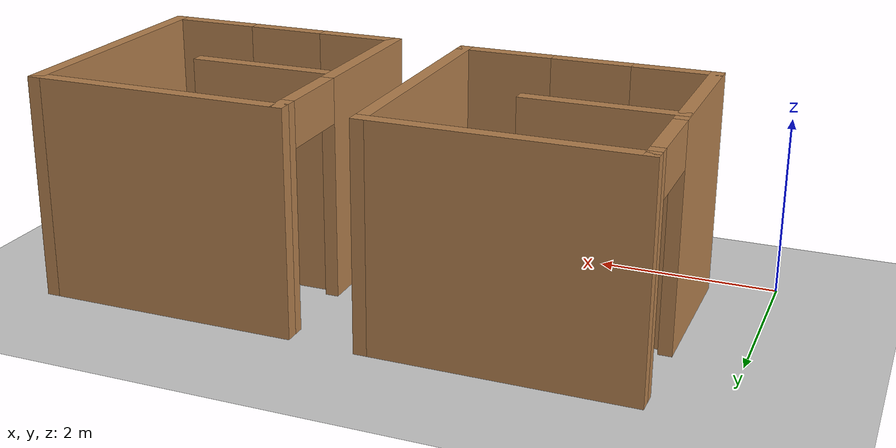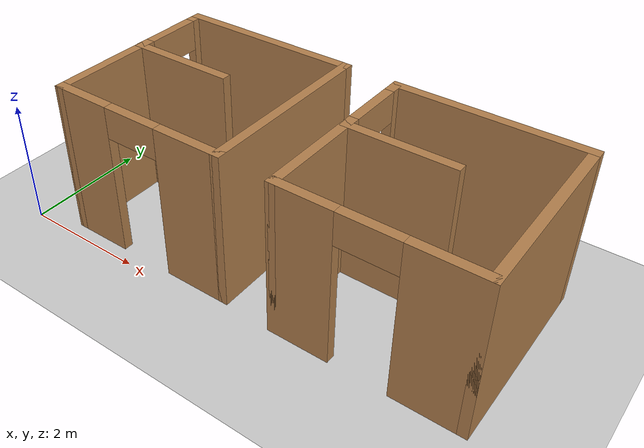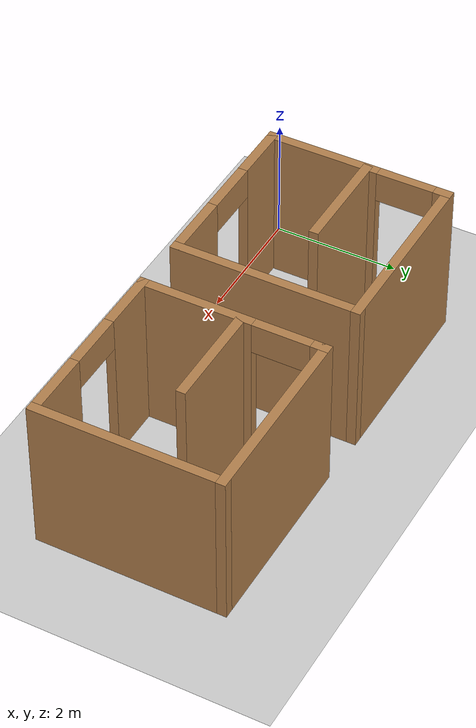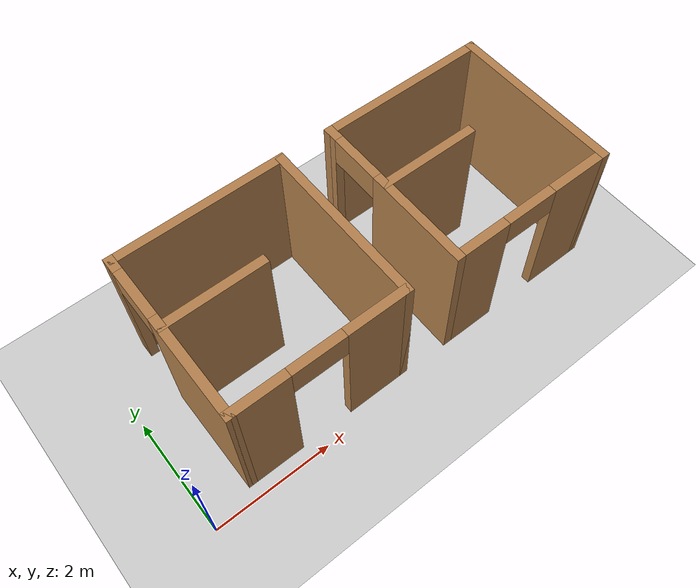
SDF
<sdf version="1.7">
 <world name="default">
  <light name="sun" type="directional">
   <pose>0 0 10 0 -0 0</pose>
   <diffuse>0.8 0.8 0.8 1</diffuse>
   <specular>0.2 0.2 0.2 1</specular>
   <attenuation>
    <range>1000</range>
    <constant>0.9</constant>
    <linear>0.01</linear>
    <quadratic>0.001</quadratic>
   </attenuation>
   <direction>-0.5 0.1 -0.9</direction>
   <spot><inner_angle>0</inner_angle><outer_angle>0</outer_angle><falloff>0</falloff></spot>
  </light>
  <model name="ground_plane">
   <static>1</static>
   <link name="link">
    <collision name="collision">
     <geometry><plane><normal>0 0 1</normal><size>100 100</size></plane></geometry>
     <surface><friction><ode><mu>100</mu><mu2>50</mu2></ode></friction></surface>
    </collision>
    <visual name="visual">
     <cast_shadows>0</cast_shadows>
     <geometry><plane><normal>0 0 1</normal><size>100 100</size></plane></geometry>
     <material>
      <script><uri>file://media/materials/scripts/gazebo.material</uri><name>Gazebo/Grey</name></script>
     </material>
    </visual>
   </link>
  </model>
  <gravity>0 0 -9.8</gravity>
  <magnetic_field>6e-06 2.3e-05 -4.2e-05</magnetic_field>
  <atmosphere type="adiabatic"/>
  <physics type="ode">
   <max_step_size>0.001</max_step_size>
   <real_time_factor>1</real_time_factor>
   <real_time_update_rate>1000</real_time_update_rate>
  </physics>
  <scene><ambient>0.4 0.4 0.4 1</ambient><background>0.7 0.7 0.7 1</background><shadows>1</shadows></scene>
  <audio><device>default</device></audio>
  <spherical_coordinates>
   <surface_model>EARTH_WGS84</surface_model>
   <latitude_deg>0</latitude_deg>
   <longitude_deg>0</longitude_deg>
   <elevation>0</elevation>
   <heading_deg>0</heading_deg>
  </spherical_coordinates>
  <model name="test_world">
   <pose>2.4796 1.71074 0 0 -0 0</pose>
   <link name="Wall_0">
    <pose>-1.6925 -0 0 0 -0 -1.5708</pose>
    <visual name="Wall_0_Visual_0">
     <pose>-1.3625 0 1.25 0 -0 0</pose>
     <geometry><box><size>0.275 0.15 2.5</size></box></geometry>
     <material>
      <script><uri>file://media/materials/scripts/gazebo.material</uri><name>Gazebo/Wood</name></script>
      <ambient>1 1 1 1</ambient>
     </material>
     <meta><layer>0</layer></meta>
    </visual>
    <collision name="Wall_0_Collision_0">
     <geometry><box><size>0.275 0.15 2.5</size></box></geometry>
     <pose>-1.3625 0 1.25 0 -0 0</pose>
    </collision>
    <visual name="Wall_0_Visual_1">
     <pose>0.5875 0 1.25 0 -0 0</pose>
     <geometry><box><size>1.825 0.15 2.5</size></box></geometry>
     <material>
      <script><uri>file://media/materials/scripts/gazebo.material</uri><name>Gazebo/Wood</name></script>
      <ambient>1 1 1 1</ambient>
     </material>
     <meta><layer>0</layer></meta>
    </visual>
    <collision name="Wall_0_Collision_1">
     <geometry><box><size>1.825 0.15 2.5</size></box></geometry>
     <pose>0.5875 0 1.25 0 -0 0</pose>
    </collision>
    <visual name="Wall_0_Visual_2">
     <pose>-0.775 0 2.25 0 -0 0</pose>
     <geometry><box><size>0.9 0.15 0.5</size></box></geometry>
     <material>
      <script><uri>file://media/materials/scripts/gazebo.material</uri><name>Gazebo/Wood</name></script>
      <ambient>1 1 1 1</ambient>
     </material>
     <meta><layer>0</layer></meta>
    </visual>
    <collision name="Wall_0_Collision_2">
     <geometry><box><size>0.9 0.15 0.5</size></box></geometry>
     <pose>-0.775 0 2.25 0 -0 0</pose>
    </collision>
   </link>
   <link name="Wall_1">
    <pose>-0.2675 -1.425 0 0 -0 0</pose>
    <visual name="Wall_1_Visual_0">
     <pose>-1.0075 0 1.25 0 -0 0</pose>
     <geometry><box><size>0.985 0.15 2.5</size></box></geometry>
     <material>
      <script><uri>file://media/materials/scripts/gazebo.material</uri><name>Gazebo/Wood</name></script>
      <ambient>1 1 1 1</ambient>
     </material>
     <meta><layer>0</layer></meta>
    </visual>
    <collision name="Wall_1_Collision_0">
     <geometry><box><size>0.985 0.15 2.5</size></box></geometry>
     <pose>-1.0075 0 1.25 0 -0 0</pose>
    </collision>
    <visual name="Wall_1_Visual_1">
     <pose>0.9425 0 1.25 0 -0 0</pose>
     <geometry><box><size>1.115 0.15 2.5</size></box></geometry>
     <material>
      <script><uri>file://media/materials/scripts/gazebo.material</uri><name>Gazebo/Wood</name></script>
      <ambient>1 1 1 1</ambient>
     </material>
     <meta><layer>0</layer></meta>
    </visual>
    <collision name="Wall_1_Collision_1">
     <geometry><box><size>1.115 0.15 2.5</size></box></geometry>
     <pose>0.9425 0 1.25 0 -0 0</pose>
    </collision>
    <visual name="Wall_1_Visual_2">
     <pose>-0.065 0 2.25 0 -0 0</pose>
     <geometry><box><size>0.9 0.15 0.5</size></box></geometry>
     <material>
      <script><uri>file://media/materials/scripts/gazebo.material</uri><name>Gazebo/Wood</name></script>
      <ambient>1 1 1 1</ambient>
     </material>
     <meta><layer>0</layer></meta>
    </visual>
    <collision name="Wall_1_Collision_2">
     <geometry><box><size>0.9 0.15 0.5</size></box></geometry>
     <pose>-0.065 0 2.25 0 -0 0</pose>
    </collision>
   </link>
   <link name="Wall_2">
    <collision name="Wall_2_Collision">
     <geometry><box><size>3 0.15 2.5</size></box></geometry>
     <pose>0 0 1.25 0 -0 0</pose>
    </collision>
    <visual name="Wall_2_Visual">
     <pose>0 0 1.25 0 -0 0</pose>
     <geometry><box><size>3 0.15 2.5</size></box></geometry>
     <material>
      <script><uri>file://media/materials/scripts/gazebo.material</uri><name>Gazebo/Wood</name></script>
      <ambient>1 1 1 1</ambient>
     </material>
     <meta><layer>0</layer></meta>
    </visual>
    <pose>1.1575 -0 0 0 -0 1.5708</pose>
   </link>
   <link name="Wall_3">
    <collision name="Wall_3_Collision">
     <geometry><box><size>3 0.15 2.5</size></box></geometry>
     <pose>0 0 1.25 0 -0 0</pose>
    </collision>
    <visual name="Wall_3_Visual">
     <pose>0 0 1.25 0 -0 0</pose>
     <geometry><box><size>3 0.15 2.5</size></box></geometry>
     <material>
      <script><uri>file://media/materials/scripts/gazebo.material</uri><name>Gazebo/Wood</name></script>
      <ambient>1 1 1 1</ambient>
     </material>
     <meta><layer>0</layer></meta>
    </visual>
    <pose>-0.2675 1.425 0 0 -0 3.14159</pose>
   </link>
   <link name="Wall_5">
    <collision name="Wall_5_Collision">
     <geometry><box><size>1.75 0.15 2.5</size></box></geometry>
     <pose>0 0 1.25 0 -0 0</pose>
    </collision>
    <visual name="Wall_5_Visual">
     <pose>0 0 1.25 0 -0 0</pose>
     <geometry><box><size>1.75 0.15 2.5</size></box></geometry>
     <material>
      <script><uri>file://media/materials/scripts/gazebo.material</uri><name>Gazebo/Wood</name></script>
      <ambient>1 1 1 1</ambient>
     </material>
     <meta><layer>0</layer></meta>
    </visual>
    <pose>-0.8825 0.135 0 0 -0 0</pose>
   </link>
   <static>1</static>
  </model>
  <model name="test_world_0">
   <pose>6.2231 1.67568 0 0 -0 0</pose>
   <link name="Wall_0">
    <pose>-1.6925 -0 0 0 -0 -1.5708</pose>
    <visual name="Wall_0_Visual_0">
     <pose>-1.3625 0 1.25 0 -0 0</pose>
     <geometry><box><size>0.275 0.15 2.5</size></box></geometry>
     <material>
      <script><uri>file://media/materials/scripts/gazebo.material</uri><name>Gazebo/Wood</name></script>
      <ambient>1 1 1 1</ambient>
     </material>
     <meta><layer>0</layer></meta>
    </visual>
    <collision name="Wall_0_Collision_0">
     <geometry><box><size>0.275 0.15 2.5</size></box></geometry>
     <pose>-1.3625 0 1.25 0 -0 0</pose>
    </collision>
    <visual name="Wall_0_Visual_1">
     <pose>0.5875 0 1.25 0 -0 0</pose>
     <geometry><box><size>1.825 0.15 2.5</size></box></geometry>
     <material>
      <script><uri>file://media/materials/scripts/gazebo.material</uri><name>Gazebo/Wood</name></script>
      <ambient>1 1 1 1</ambient>
     </material>
     <meta><layer>0</layer></meta>
    </visual>
    <collision name="Wall_0_Collision_1">
     <geometry><box><size>1.825 0.15 2.5</size></box></geometry>
     <pose>0.5875 0 1.25 0 -0 0</pose>
    </collision>
    <visual name="Wall_0_Visual_2">
     <pose>-0.775 0 2.25 0 -0 0</pose>
     <geometry><box><size>0.9 0.15 0.5</size></box></geometry>
     <material>
      <script><uri>file://media/materials/scripts/gazebo.material</uri><name>Gazebo/Wood</name></script>
      <ambient>1 1 1 1</ambient>
     </material>
     <meta><layer>0</layer></meta>
    </visual>
    <collision name="Wall_0_Collision_2">
     <geometry><box><size>0.9 0.15 0.5</size></box></geometry>
     <pose>-0.775 0 2.25 0 -0 0</pose>
    </collision>
   </link>
   <link name="Wall_1">
    <pose>-0.2675 -1.425 0 0 -0 0</pose>
    <visual name="Wall_1_Visual_0">
     <pose>-1.0075 0 1.25 0 -0 0</pose>
     <geometry><box><size>0.985 0.15 2.5</size></box></geometry>
     <material>
      <script><uri>file://media/materials/scripts/gazebo.material</uri><name>Gazebo/Wood</name></script>
      <ambient>1 1 1 1</ambient>
     </material>
     <meta><layer>0</layer></meta>
    </visual>
    <collision name="Wall_1_Collision_0">
     <geometry><box><size>0.985 0.15 2.5</size></box></geometry>
     <pose>-1.0075 0 1.25 0 -0 0</pose>
    </collision>
    <visual name="Wall_1_Visual_1">
     <pose>0.9425 0 1.25 0 -0 0</pose>
     <geometry><box><size>1.115 0.15 2.5</size></box></geometry>
     <material>
      <script><uri>file://media/materials/scripts/gazebo.material</uri><name>Gazebo/Wood</name></script>
      <ambient>1 1 1 1</ambient>
     </material>
     <meta><layer>0</layer></meta>
    </visual>
    <collision name="Wall_1_Collision_1">
     <geometry><box><size>1.115 0.15 2.5</size></box></geometry>
     <pose>0.9425 0 1.25 0 -0 0</pose>
    </collision>
    <visual name="Wall_1_Visual_2">
     <pose>-0.065 0 2.25 0 -0 0</pose>
     <geometry><box><size>0.9 0.15 0.5</size></box></geometry>
     <material>
      <script><uri>file://media/materials/scripts/gazebo.material</uri><name>Gazebo/Wood</name></script>
      <ambient>1 1 1 1</ambient>
     </material>
     <meta><layer>0</layer></meta>
    </visual>
    <collision name="Wall_1_Collision_2">
     <geometry><box><size>0.9 0.15 0.5</size></box></geometry>
     <pose>-0.065 0 2.25 0 -0 0</pose>
    </collision>
   </link>
   <link name="Wall_2">
    <collision name="Wall_2_Collision">
     <geometry><box><size>3 0.15 2.5</size></box></geometry>
     <pose>0 0 1.25 0 -0 0</pose>
    </collision>
    <visual name="Wall_2_Visual">
     <pose>0 0 1.25 0 -0 0</pose>
     <geometry><box><size>3 0.15 2.5</size></box></geometry>
     <material>
      <script><uri>file://media/materials/scripts/gazebo.material</uri><name>Gazebo/Wood</name></script>
      <ambient>1 1 1 1</ambient>
     </material>
     <meta><layer>0</layer></meta>
    </visual>
    <pose>1.1575 -0 0 0 -0 1.5708</pose>
   </link>
   <link name="Wall_3">
    <collision name="Wall_3_Collision">
     <geometry><box><size>3 0.15 2.5</size></box></geometry>
     <pose>0 0 1.25 0 -0 0</pose>
    </collision>
    <visual name="Wall_3_Visual">
     <pose>0 0 1.25 0 -0 0</pose>
     <geometry><box><size>3 0.15 2.5</size></box></geometry>
     <material>
      <script><uri>file://media/materials/scripts/gazebo.material</uri><name>Gazebo/Wood</name></script>
      <ambient>1 1 1 1</ambient>
     </material>
     <meta><layer>0</layer></meta>
    </visual>
    <pose>-0.2675 1.425 0 0 -0 3.14159</pose>
   </link>
   <link name="Wall_5">
    <collision name="Wall_5_Collision">
     <geometry><box><size>1.75 0.15 2.5</size></box></geometry>
     <pose>0 0 1.25 0 -0 0</pose>
    </collision>
    <visual name="Wall_5_Visual">
     <pose>0 0 1.25 0 -0 0</pose>
     <geometry><box><size>1.75 0.15 2.5</size></box></geometry>
     <material>
      <script><uri>file://media/materials/scripts/gazebo.material</uri><name>Gazebo/Wood</name></script>
      <ambient>1 1 1 1</ambient>
     </material>
     <meta><layer>0</layer></meta>
    </visual>
    <pose>-0.8825 0.135 0 0 -0 0</pose>
   </link>
   <static>1</static>
  </model>
 </world>
</sdf>
